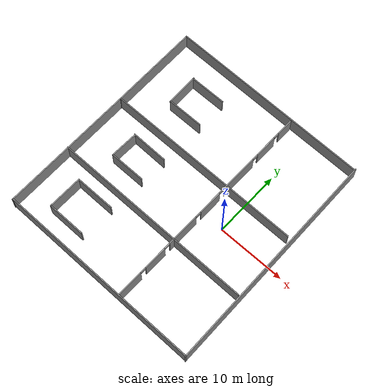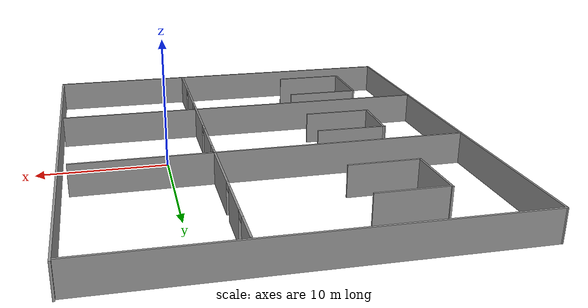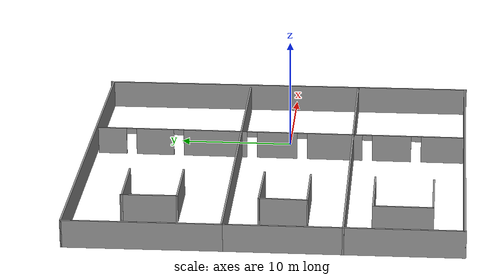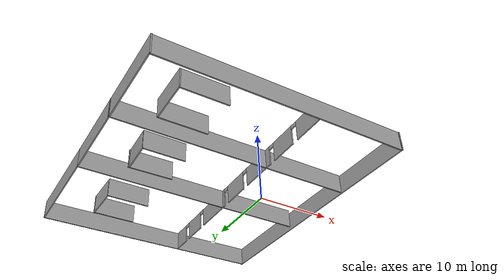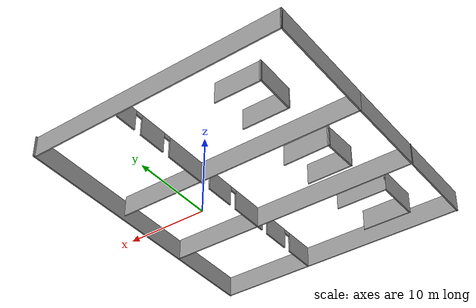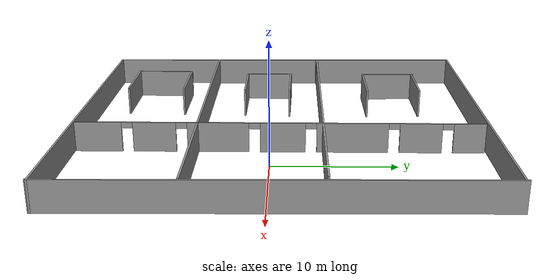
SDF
<?xml version='1.0'?>
<sdf version='1.7'>
  <model name='new_map'>
    <pose>-7.22638 0.847017 0 0 -0 0</pose>
    <link name='Wall_31'>
      <collision name='Wall_31_Collision'>
        <geometry>
          <box>
            <size>20.4001 0.15 2.5</size>
          </box>
        </geometry>
        <pose>0 0 1.25 0 -0 0</pose>
      </collision>
      <visual name='Wall_31_Visual'>
        <pose>0 0 1.25 0 -0 0</pose>
        <geometry>
          <box>
            <size>20.4001 0.15 2.5</size>
          </box>
        </geometry>
        <material>
          <script>
            <uri>file://media/materials/scripts/gazebo.material</uri>
            <name>Gazebo/Grey</name>
          </script>
          <ambient>1 1 1 1</ambient>
        </material>
        <meta>
          <layer>0</layer>
        </meta>
      </visual>
      <pose>-15.2059 -6.8056 0 0 -0 -1.56194</pose>
    </link>
    <link name='Wall_32'>
      <collision name='Wall_32_Collision'>
        <geometry>
          <box>
            <size>30.75 0.15 2.5</size>
          </box>
        </geometry>
        <pose>0 0 1.25 0 -0 0</pose>
      </collision>
      <visual name='Wall_32_Visual'>
        <pose>0 0 1.25 0 -0 0</pose>
        <geometry>
          <box>
            <size>30.75 0.15 2.5</size>
          </box>
        </geometry>
        <material>
          <script>
            <uri>file://media/materials/scripts/gazebo.material</uri>
            <name>Gazebo/Grey</name>
          </script>
          <ambient>1 1 1 1</ambient>
        </material>
        <meta>
          <layer>0</layer>
        </meta>
      </visual>
      <pose>0.183788 -16.8597 0 0 -0 0</pose>
    </link>
    <link name='Wall_34'>
      <collision name='Wall_34_Collision'>
        <geometry>
          <box>
            <size>33.8423 0.15 2.5</size>
          </box>
        </geometry>
        <pose>0 0 1.25 0 -0 0</pose>
      </collision>
      <visual name='Wall_34_Visual'>
        <pose>0 0 1.25 0 -0 0</pose>
        <geometry>
          <box>
            <size>33.8423 0.15 2.5</size>
          </box>
        </geometry>
        <material>
          <script>
            <uri>file://media/materials/scripts/gazebo.material</uri>
            <name>Gazebo/Grey</name>
          </script>
          <ambient>1 1 1 1</ambient>
        </material>
        <meta>
          <layer>0</layer>
        </meta>
      </visual>
      <pose>15.2841 -0.085334 0 0 -0 1.58265</pose>
    </link>
    <link name='Wall_35'>
      <collision name='Wall_35_Collision'>
        <geometry>
          <box>
            <size>30.7202 0.15 2.5</size>
          </box>
        </geometry>
        <pose>0 0 1.25 0 -0 0</pose>
      </collision>
      <visual name='Wall_35_Visual'>
        <pose>0 0 1.25 0 -0 0</pose>
        <geometry>
          <box>
            <size>30.7202 0.15 2.5</size>
          </box>
        </geometry>
        <material>
          <script>
            <uri>file://media/materials/scripts/gazebo.material</uri>
            <name>Gazebo/Grey</name>
          </script>
          <ambient>1 1 1 1</ambient>
        </material>
        <meta>
          <layer>0</layer>
        </meta>
      </visual>
      <pose>-0.199581 16.7516 0 0 -0 3.12991</pose>
    </link>
    <link name='Wall_36'>
      <collision name='Wall_36_Collision'>
        <geometry>
          <box>
            <size>13.7624 0.15 2.5</size>
          </box>
        </geometry>
        <pose>0 0 1.25 0 -0 0</pose>
      </collision>
      <visual name='Wall_36_Visual'>
        <pose>0 0 1.25 0 -0 0</pose>
        <geometry>
          <box>
            <size>13.7624 0.15 2.5</size>
          </box>
        </geometry>
        <material>
          <script>
            <uri>file://media/materials/scripts/gazebo.material</uri>
            <name>Gazebo/Grey</name>
          </script>
          <ambient>1 1 1 1</ambient>
        </material>
        <meta>
          <layer>0</layer>
        </meta>
      </visual>
      <pose>-15.3896 10.1246 0 0 -0 -1.55698</pose>
    </link>
    <link name='Wall_41'>
      <collision name='Wall_41_Collision'>
        <geometry>
          <box>
            <size>30 0.15 2.5</size>
          </box>
        </geometry>
        <pose>0 0 1.25 0 -0 0</pose>
      </collision>
      <visual name='Wall_41_Visual'>
        <pose>0 0 1.25 0 -0 0</pose>
        <geometry>
          <box>
            <size>30 0.15 2.5</size>
          </box>
        </geometry>
        <material>
          <script>
            <uri>file://media/materials/scripts/gazebo.material</uri>
            <name>Gazebo/Grey</name>
          </script>
          <ambient>1 1 1 1</ambient>
        </material>
        <meta>
          <layer>0</layer>
        </meta>
      </visual>
      <pose>-0.370624 3.41235 0 0 -0 0</pose>
    </link>
    <link name='Wall_43'>
      <collision name='Wall_43_Collision'>
        <geometry>
          <box>
            <size>30.5 0.15 2.5</size>
          </box>
        </geometry>
        <pose>0 0 1.25 0 -0 0</pose>
      </collision>
      <visual name='Wall_43_Visual'>
        <pose>0 0 1.25 0 -0 0</pose>
        <geometry>
          <box>
            <size>30.5 0.15 2.5</size>
          </box>
        </geometry>
        <material>
          <script>
            <uri>file://media/materials/scripts/gazebo.material</uri>
            <name>Gazebo/Grey</name>
          </script>
          <ambient>1 1 1 1</ambient>
        </material>
        <meta>
          <layer>0</layer>
        </meta>
      </visual>
      <pose>-0.083445 -6.754 0 0 -0 0</pose>
    </link>
    <link name='Wall_45'>
      <pose>4.12911 -0.124891 0 0 -0 -1.5708</pose>
      <visual name='Wall_45_Visual_0'>
        <pose>-15.327 0 1.25 0 -0 0</pose>
        <geometry>
          <box>
            <size>2.59604 0.15 2.5</size>
          </box>
        </geometry>
        <material>
          <script>
            <uri>file://media/materials/scripts/gazebo.material</uri>
            <name>Gazebo/Grey</name>
          </script>
          <ambient>1 1 1 1</ambient>
        </material>
        <meta>
          <layer>0</layer>
        </meta>
      </visual>
      <collision name='Wall_45_Collision_0'>
        <geometry>
          <box>
            <size>2.59604 0.15 2.5</size>
          </box>
        </geometry>
        <pose>-15.327 0 1.25 0 -0 0</pose>
      </collision>
      <visual name='Wall_45_Visual_1'>
        <pose>-11.4129 0 1.25 0 -0 0</pose>
        <geometry>
          <box>
            <size>3.43206 0.15 2.5</size>
          </box>
        </geometry>
        <material>
          <script>
            <uri>file://media/materials/scripts/gazebo.material</uri>
            <name>Gazebo/Grey</name>
          </script>
          <ambient>1 1 1 1</ambient>
        </material>
        <meta>
          <layer>0</layer>
        </meta>
      </visual>
      <collision name='Wall_45_Collision_1'>
        <geometry>
          <box>
            <size>3.43206 0.15 2.5</size>
          </box>
        </geometry>
        <pose>-11.4129 0 1.25 0 -0 0</pose>
      </collision>
      <visual name='Wall_45_Visual_2'>
        <pose>-5.8994 0 1.25 0 -0 0</pose>
        <geometry>
          <box>
            <size>5.795 0.15 2.5</size>
          </box>
        </geometry>
        <material>
          <script>
            <uri>file://media/materials/scripts/gazebo.material</uri>
            <name>Gazebo/Grey</name>
          </script>
          <ambient>1 1 1 1</ambient>
        </material>
        <meta>
          <layer>0</layer>
        </meta>
      </visual>
      <collision name='Wall_45_Collision_2'>
        <geometry>
          <box>
            <size>5.795 0.15 2.5</size>
          </box>
        </geometry>
        <pose>-5.8994 0 1.25 0 -0 0</pose>
      </collision>
      <visual name='Wall_45_Visual_3'>
        <pose>-0.267633 0 1.25 0 -0 0</pose>
        <geometry>
          <box>
            <size>3.66852 0.15 2.5</size>
          </box>
        </geometry>
        <material>
          <script>
            <uri>file://media/materials/scripts/gazebo.material</uri>
            <name>Gazebo/Grey</name>
          </script>
          <ambient>1 1 1 1</ambient>
        </material>
        <meta>
          <layer>0</layer>
        </meta>
      </visual>
      <collision name='Wall_45_Collision_3'>
        <geometry>
          <box>
            <size>3.66852 0.15 2.5</size>
          </box>
        </geometry>
        <pose>-0.267633 0 1.25 0 -0 0</pose>
      </collision>
      <visual name='Wall_45_Visual_4'>
        <pose>4.97022 0 1.25 0 -0 0</pose>
        <geometry>
          <box>
            <size>5.00719 0.15 2.5</size>
          </box>
        </geometry>
        <material>
          <script>
            <uri>file://media/materials/scripts/gazebo.material</uri>
            <name>Gazebo/Grey</name>
          </script>
          <ambient>1 1 1 1</ambient>
        </material>
        <meta>
          <layer>0</layer>
        </meta>
      </visual>
      <collision name='Wall_45_Collision_4'>
        <geometry>
          <box>
            <size>5.00719 0.15 2.5</size>
          </box>
        </geometry>
        <pose>4.97022 0 1.25 0 -0 0</pose>
      </collision>
      <visual name='Wall_45_Visual_5'>
        <pose>10.1292 0 1.25 0 -0 0</pose>
        <geometry>
          <box>
            <size>3.51083 0.15 2.5</size>
          </box>
        </geometry>
        <material>
          <script>
            <uri>file://media/materials/scripts/gazebo.material</uri>
            <name>Gazebo/Grey</name>
          </script>
          <ambient>1 1 1 1</ambient>
        </material>
        <meta>
          <layer>0</layer>
        </meta>
      </visual>
      <collision name='Wall_45_Collision_5'>
        <geometry>
          <box>
            <size>3.51083 0.15 2.5</size>
          </box>
        </geometry>
        <pose>10.1292 0 1.25 0 -0 0</pose>
      </collision>
      <visual name='Wall_45_Visual_6'>
        <pose>14.7048 0 1.25 0 -0 0</pose>
        <geometry>
          <box>
            <size>3.84035 0.15 2.5</size>
          </box>
        </geometry>
        <material>
          <script>
            <uri>file://media/materials/scripts/gazebo.material</uri>
            <name>Gazebo/Grey</name>
          </script>
          <ambient>1 1 1 1</ambient>
        </material>
        <meta>
          <layer>0</layer>
        </meta>
      </visual>
      <collision name='Wall_45_Collision_6'>
        <geometry>
          <box>
            <size>3.84035 0.15 2.5</size>
          </box>
        </geometry>
        <pose>14.7048 0 1.25 0 -0 0</pose>
      </collision>
      <visual name='Wall_45_Visual_7'>
        <pose>-13.579 0 2.25 0 -0 0</pose>
        <geometry>
          <box>
            <size>0.9 0.15 0.5</size>
          </box>
        </geometry>
        <material>
          <script>
            <uri>file://media/materials/scripts/gazebo.material</uri>
            <name>Gazebo/Grey</name>
          </script>
          <ambient>1 1 1 1</ambient>
        </material>
        <meta>
          <layer>0</layer>
        </meta>
      </visual>
      <collision name='Wall_45_Collision_7'>
        <geometry>
          <box>
            <size>0.9 0.15 0.5</size>
          </box>
        </geometry>
        <pose>-13.579 0 2.25 0 -0 0</pose>
      </collision>
      <visual name='Wall_45_Visual_8'>
        <pose>-9.2469 0 2.25 0 -0 0</pose>
        <geometry>
          <box>
            <size>0.9 0.15 0.5</size>
          </box>
        </geometry>
        <material>
          <script>
            <uri>file://media/materials/scripts/gazebo.material</uri>
            <name>Gazebo/Grey</name>
          </script>
          <ambient>1 1 1 1</ambient>
        </material>
        <meta>
          <layer>0</layer>
        </meta>
      </visual>
      <collision name='Wall_45_Collision_8'>
        <geometry>
          <box>
            <size>0.9 0.15 0.5</size>
          </box>
        </geometry>
        <pose>-9.2469 0 2.25 0 -0 0</pose>
      </collision>
      <visual name='Wall_45_Visual_9'>
        <pose>-2.5519 0 2.25 0 -0 0</pose>
        <geometry>
          <box>
            <size>0.9 0.15 0.5</size>
          </box>
        </geometry>
        <material>
          <script>
            <uri>file://media/materials/scripts/gazebo.material</uri>
            <name>Gazebo/Grey</name>
          </script>
          <ambient>1 1 1 1</ambient>
        </material>
        <meta>
          <layer>0</layer>
        </meta>
      </visual>
      <collision name='Wall_45_Collision_9'>
        <geometry>
          <box>
            <size>0.9 0.15 0.5</size>
          </box>
        </geometry>
        <pose>-2.5519 0 2.25 0 -0 0</pose>
      </collision>
      <visual name='Wall_45_Visual_10'>
        <pose>2.01663 0 2.25 0 -0 0</pose>
        <geometry>
          <box>
            <size>0.9 0.15 0.5</size>
          </box>
        </geometry>
        <material>
          <script>
            <uri>file://media/materials/scripts/gazebo.material</uri>
            <name>Gazebo/Grey</name>
          </script>
          <ambient>1 1 1 1</ambient>
        </material>
        <meta>
          <layer>0</layer>
        </meta>
      </visual>
      <collision name='Wall_45_Collision_10'>
        <geometry>
          <box>
            <size>0.9 0.15 0.5</size>
          </box>
        </geometry>
        <pose>2.01663 0 2.25 0 -0 0</pose>
      </collision>
      <visual name='Wall_45_Visual_11'>
        <pose>7.92382 0 2.25 0 -0 0</pose>
        <geometry>
          <box>
            <size>0.9 0.15 0.5</size>
          </box>
        </geometry>
        <material>
          <script>
            <uri>file://media/materials/scripts/gazebo.material</uri>
            <name>Gazebo/Grey</name>
          </script>
          <ambient>1 1 1 1</ambient>
        </material>
        <meta>
          <layer>0</layer>
        </meta>
      </visual>
      <collision name='Wall_45_Collision_11'>
        <geometry>
          <box>
            <size>0.9 0.15 0.5</size>
          </box>
        </geometry>
        <pose>7.92382 0 2.25 0 -0 0</pose>
      </collision>
      <visual name='Wall_45_Visual_12'>
        <pose>12.3346 0 2.25 0 -0 0</pose>
        <geometry>
          <box>
            <size>0.9 0.15 0.5</size>
          </box>
        </geometry>
        <material>
          <script>
            <uri>file://media/materials/scripts/gazebo.material</uri>
            <name>Gazebo/Grey</name>
          </script>
          <ambient>1 1 1 1</ambient>
        </material>
        <meta>
          <layer>0</layer>
        </meta>
      </visual>
      <collision name='Wall_45_Collision_12'>
        <geometry>
          <box>
            <size>0.9 0.15 0.5</size>
          </box>
        </geometry>
        <pose>12.3346 0 2.25 0 -0 0</pose>
      </collision>
    </link>
    <link name='Wall_47'>
      <collision name='Wall_47_Collision'>
        <geometry>
          <box>
            <size>5.5 0.15 2.5</size>
          </box>
        </geometry>
        <pose>0 0 1.25 0 -0 0</pose>
      </collision>
      <visual name='Wall_47_Visual'>
        <pose>0 0 1.25 0 -0 0</pose>
        <geometry>
          <box>
            <size>5.5 0.15 2.5</size>
          </box>
        </geometry>
        <material>
          <script>
            <uri>file://media/materials/scripts/gazebo.material</uri>
            <name>Gazebo/Grey</name>
          </script>
          <ambient>1 1 1 1</ambient>
        </material>
        <meta>
          <layer>0</layer>
        </meta>
      </visual>
      <pose>-7.40938 12.4648 0 0 -0 3.14159</pose>
    </link>
    <link name='Wall_48'>
      <collision name='Wall_48_Collision'>
        <geometry>
          <box>
            <size>4.89083 0.15 2.5</size>
          </box>
        </geometry>
        <pose>0 0 1.25 0 -0 0</pose>
      </collision>
      <visual name='Wall_48_Visual'>
        <pose>0 0 1.25 0 -0 0</pose>
        <geometry>
          <box>
            <size>4.89083 0.15 2.5</size>
          </box>
        </geometry>
        <material>
          <script>
            <uri>file://media/materials/scripts/gazebo.material</uri>
            <name>Gazebo/Grey</name>
          </script>
          <ambient>1 1 1 1</ambient>
        </material>
        <meta>
          <layer>0</layer>
        </meta>
      </visual>
      <pose>-10.0264 10.1884 0 0 -0 -1.54632</pose>
    </link>
    <link name='Wall_49'>
      <collision name='Wall_49_Collision'>
        <geometry>
          <box>
            <size>5.5 0.15 2.5</size>
          </box>
        </geometry>
        <pose>0 0 1.25 0 -0 0</pose>
      </collision>
      <visual name='Wall_49_Visual'>
        <pose>0 0 1.25 0 -0 0</pose>
        <geometry>
          <box>
            <size>5.5 0.15 2.5</size>
          </box>
        </geometry>
        <material>
          <script>
            <uri>file://media/materials/scripts/gazebo.material</uri>
            <name>Gazebo/Grey</name>
          </script>
          <ambient>1 1 1 1</ambient>
        </material>
        <meta>
          <layer>0</layer>
        </meta>
      </visual>
      <pose>-7.29336 7.72537 0 0 -0 0</pose>
    </link>
    <link name='Wall_52'>
      <collision name='Wall_52_Collision'>
        <geometry>
          <box>
            <size>5.59784 0.15 2.5</size>
          </box>
        </geometry>
        <pose>0 0 1.25 0 -0 0</pose>
      </collision>
      <visual name='Wall_52_Visual'>
        <pose>0 0 1.25 0 -0 0</pose>
        <geometry>
          <box>
            <size>5.59784 0.15 2.5</size>
          </box>
        </geometry>
        <material>
          <script>
            <uri>file://media/materials/scripts/gazebo.material</uri>
            <name>Gazebo/Grey</name>
          </script>
          <ambient>1 1 1 1</ambient>
        </material>
        <meta>
          <layer>0</layer>
        </meta>
      </visual>
      <pose>-7.31684 0.664116 0 0 -0 3.12447</pose>
    </link>
    <link name='Wall_53'>
      <collision name='Wall_53_Collision'>
        <geometry>
          <box>
            <size>4.21747 0.15 2.5</size>
          </box>
        </geometry>
        <pose>0 0 1.25 0 -0 0</pose>
      </collision>
      <visual name='Wall_53_Visual'>
        <pose>0 0 1.25 0 -0 0</pose>
        <geometry>
          <box>
            <size>4.21747 0.15 2.5</size>
          </box>
        </geometry>
        <material>
          <script>
            <uri>file://media/materials/scripts/gazebo.material</uri>
            <name>Gazebo/Grey</name>
          </script>
          <ambient>1 1 1 1</ambient>
        </material>
        <meta>
          <layer>0</layer>
        </meta>
      </visual>
      <pose>-9.99371 -1.32245 0 0 -0 -1.59373</pose>
    </link>
    <link name='Wall_54'>
      <collision name='Wall_54_Collision'>
        <geometry>
          <box>
            <size>5.34704 0.15 2.5</size>
          </box>
        </geometry>
        <pose>0 0 1.25 0 -0 0</pose>
      </collision>
      <visual name='Wall_54_Visual'>
        <pose>0 0 1.25 0 -0 0</pose>
        <geometry>
          <box>
            <size>5.34704 0.15 2.5</size>
          </box>
        </geometry>
        <material>
          <script>
            <uri>file://media/materials/scripts/gazebo.material</uri>
            <name>Gazebo/Grey</name>
          </script>
          <ambient>1 1 1 1</ambient>
        </material>
        <meta>
          <layer>0</layer>
        </meta>
      </visual>
      <pose>-7.44184 -3.44893 0 0 -0 0</pose>
    </link>
    <link name='Wall_56'>
      <collision name='Wall_56_Collision'>
        <geometry>
          <box>
            <size>6 0.15 2.5</size>
          </box>
        </geometry>
        <pose>0 0 1.25 0 -0 0</pose>
      </collision>
      <visual name='Wall_56_Visual'>
        <pose>0 0 1.25 0 -0 0</pose>
        <geometry>
          <box>
            <size>6 0.15 2.5</size>
          </box>
        </geometry>
        <material>
          <script>
            <uri>file://media/materials/scripts/gazebo.material</uri>
            <name>Gazebo/Grey</name>
          </script>
          <ambient>1 1 1 1</ambient>
        </material>
        <meta>
          <layer>0</layer>
        </meta>
      </visual>
      <pose>-7.87098 -9.08421 0 0 -0 3.14159</pose>
    </link>
    <link name='Wall_57'>
      <collision name='Wall_57_Collision'>
        <geometry>
          <box>
            <size>5.25 0.15 2.5</size>
          </box>
        </geometry>
        <pose>0 0 1.25 0 -0 0</pose>
      </collision>
      <visual name='Wall_57_Visual'>
        <pose>0 0 1.25 0 -0 0</pose>
        <geometry>
          <box>
            <size>5.25 0.15 2.5</size>
          </box>
        </geometry>
        <material>
          <script>
            <uri>file://media/materials/scripts/gazebo.material</uri>
            <name>Gazebo/Grey</name>
          </script>
          <ambient>1 1 1 1</ambient>
        </material>
        <meta>
          <layer>0</layer>
        </meta>
      </visual>
      <pose>-10.796 -11.6342 0 0 -0 -1.5708</pose>
    </link>
    <link name='Wall_58'>
      <collision name='Wall_58_Collision'>
        <geometry>
          <box>
            <size>5.75 0.15 2.5</size>
          </box>
        </geometry>
        <pose>0 0 1.25 0 -0 0</pose>
      </collision>
      <visual name='Wall_58_Visual'>
        <pose>0 0 1.25 0 -0 0</pose>
        <geometry>
          <box>
            <size>5.75 0.15 2.5</size>
          </box>
        </geometry>
        <material>
          <script>
            <uri>file://media/materials/scripts/gazebo.material</uri>
            <name>Gazebo/Grey</name>
          </script>
          <ambient>1 1 1 1</ambient>
        </material>
        <meta>
          <layer>0</layer>
        </meta>
      </visual>
      <pose>-7.99598 -14.1842 0 0 -0 0</pose>
    </link>
    <static>1</static>
  </model>
</sdf>
